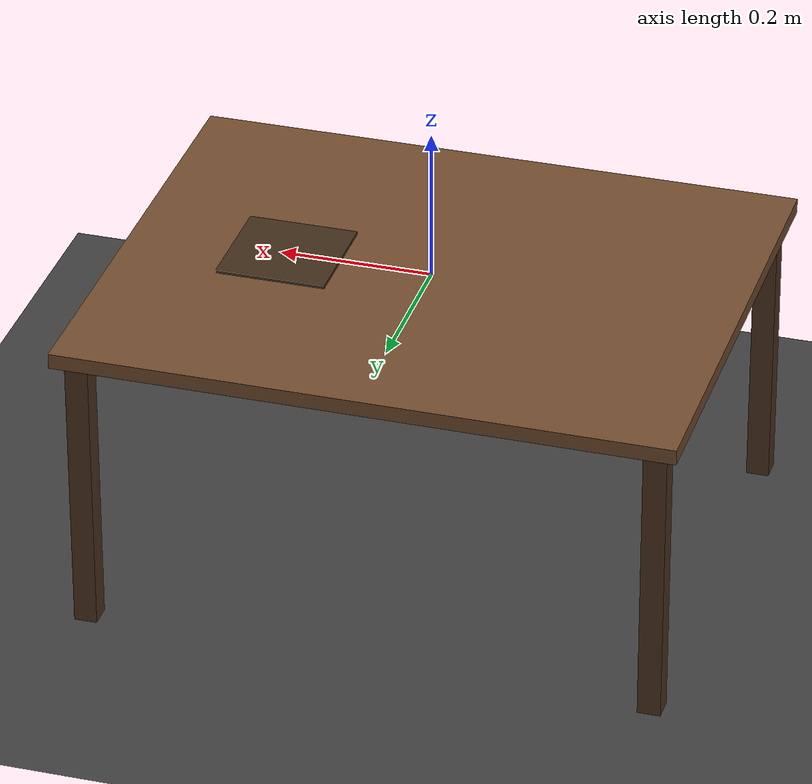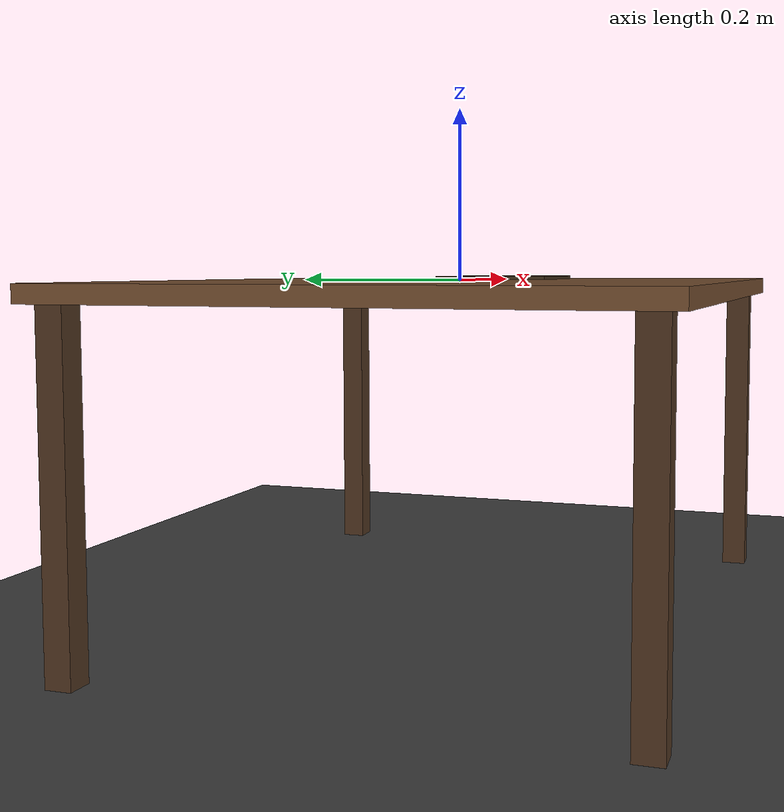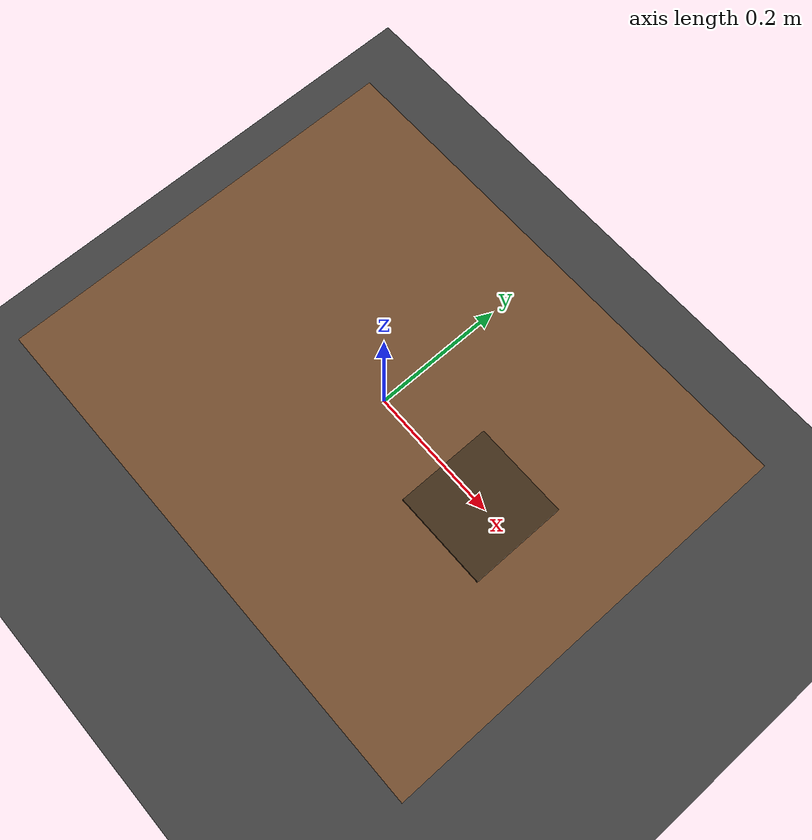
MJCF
<mujoco model="chess_table">
  <option timestep="0.002" gravity="0 0 -9.81" integrator="implicitfast"/>

  <visual>
    <headlight ambient="0.4 0.4 0.4" diffuse="0.6 0.6 0.6"/>
    <global offwidth="1280" offheight="960"/>
  </visual>

  <asset>
    <texture type="skybox" builtin="gradient" rgb1="0.3 0.5 0.7" rgb2="0 0 0" width="256" height="256"/>
    <texture name="floor_tex" type="2d" builtin="checker" rgb1="0.2 0.2 0.2" rgb2="0.3 0.3 0.3" width="300" height="300"/>
    <material name="floor_mat" texture="floor_tex" texrepeat="6 6" reflectance="0.0"/>
    <material name="table_mat" rgba="0.45 0.30 0.18 1"/>
    <material name="leg_mat" rgba="0.30 0.20 0.12 1"/>
    <!-- Procedural checker pattern for the chess board: one textured geom
         instead of 64 hand-placed square geoms. -->
    <texture name="board_tex" type="2d" builtin="checker" rgb1="0.85 0.82 0.70" rgb2="0.20 0.15 0.10"
              width="64" height="64"/>
    <material name="board_mat" texture="board_tex" texrepeat="4 4" texuniform="false" reflectance="0.05"/>
  </asset>

  <worldbody>
    <light pos="0 0 1.5" dir="0 0 -1" diffuse="0.7 0.7 0.7" specular="0.2 0.2 0.2" directional="true"/>
    <light pos="0.3 0.3 1.2" dir="-0.3 -0.3 -1" diffuse="0.3 0.3 0.3" directional="true"/>

    <!-- Floor, well below the tabletop -->
    <geom name="floor" type="plane" size="1.5 1.5 0.01" pos="0 0 -0.40" material="floor_mat"/>

    <!-- Table: top surface defined at world z = 0 -->
    <body name="table" pos="0 0 0">
      <geom name="tabletop" type="box" size="0.40 0.32 0.01" pos="0 0 -0.01" material="table_mat"/>
      <geom name="leg_fl" type="box" size="0.015 0.015 0.19" pos="0.37 0.29 -0.21" material="leg_mat"/>
      <geom name="leg_fr" type="box" size="0.015 0.015 0.19" pos="0.37 -0.29 -0.21" material="leg_mat"/>
      <geom name="leg_bl" type="box" size="0.015 0.015 0.19" pos="-0.37 0.29 -0.21" material="leg_mat"/>
      <geom name="leg_br" type="box" size="0.015 0.015 0.19" pos="-0.37 -0.29 -0.21" material="leg_mat"/>
    </body>

    <body name="chessboard" pos="0.192 0 0.0">
      <geom name="board_base" type="box" size="0.072 0.072 0.002" pos="0 0 0.002" rgba="0.25 0.18 0.10 1"/>
      <geom name="board_slab" type="plane" size="0.072 0.072 0.01" pos="0 0 0.0045" material="board_mat"/>
    </body>
  </worldbody>
</mujoco>
